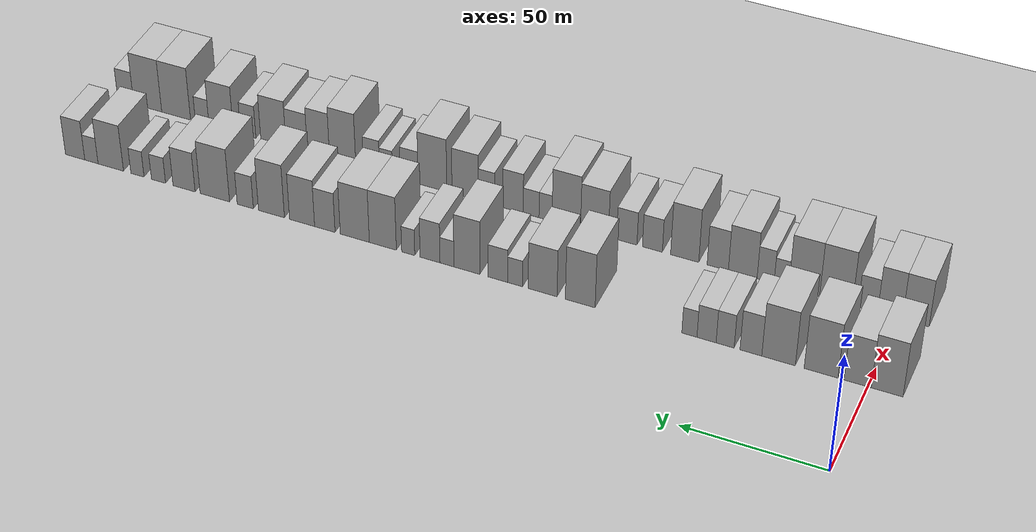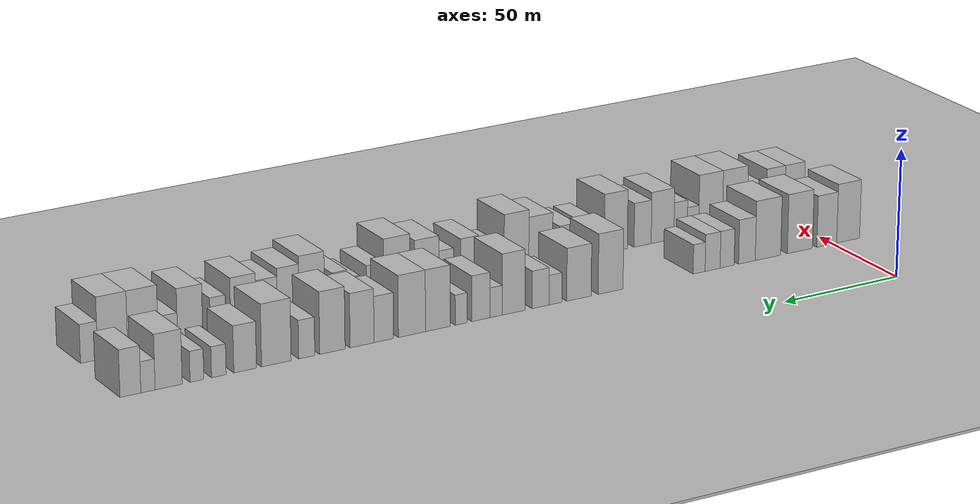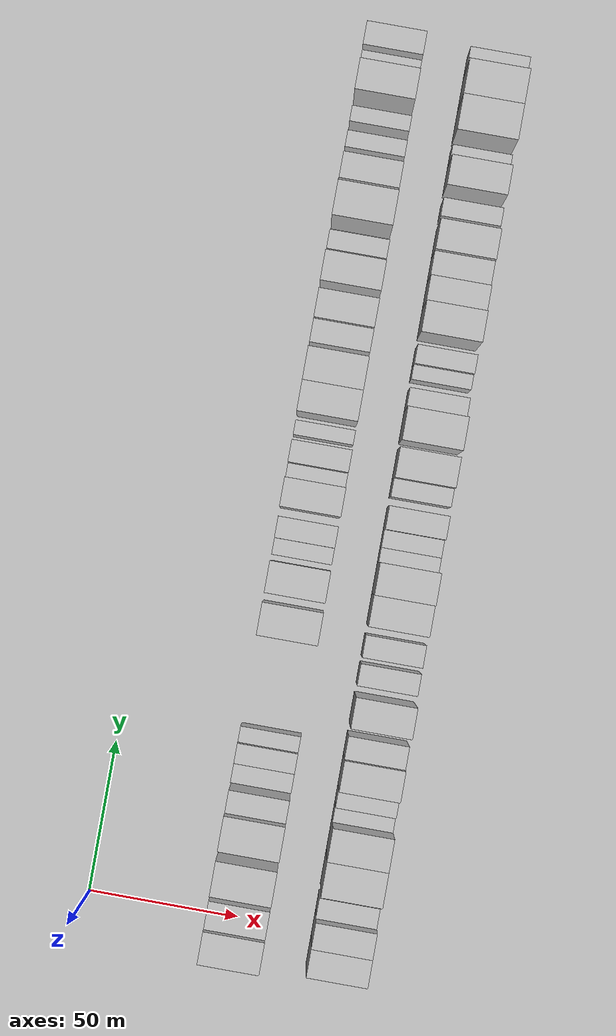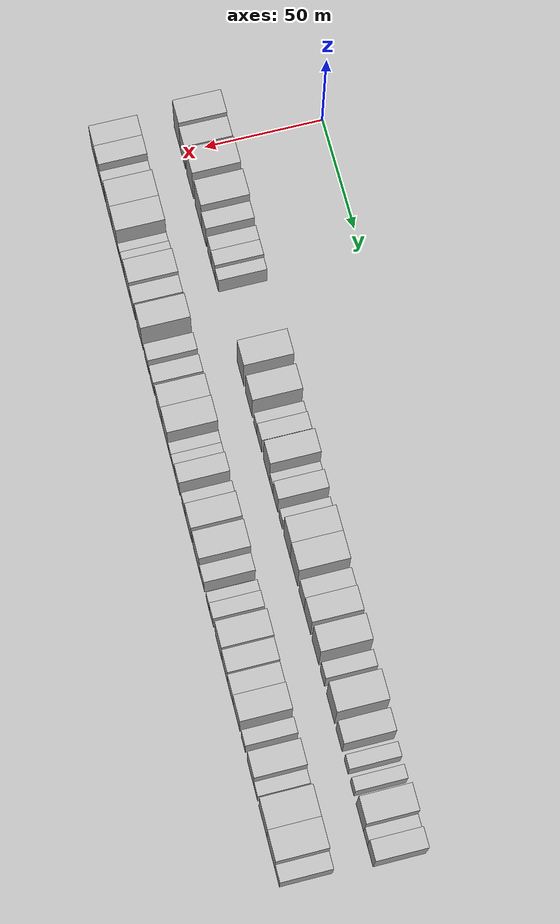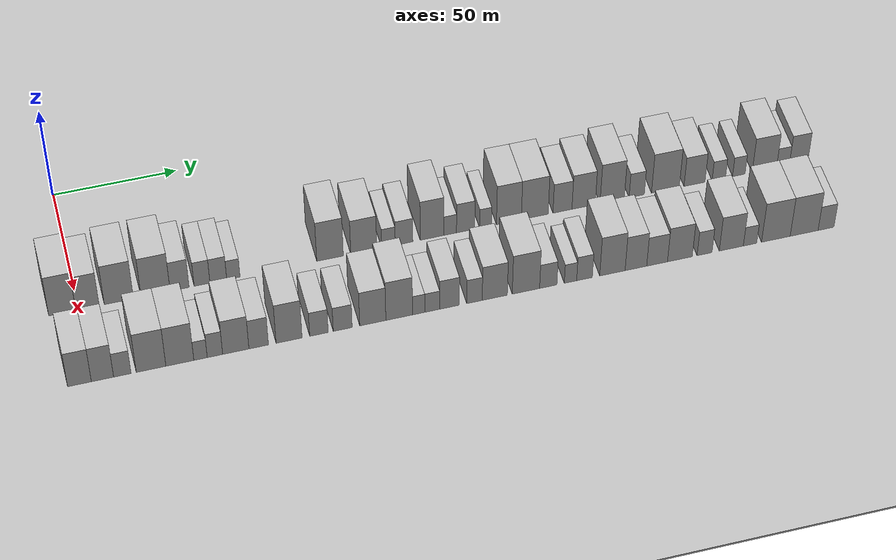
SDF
<sdf version="1.6">
 <world name="default">
  <include><name>ground_plane_1</name><uri>model://HANNAS_ground_plane</uri></include>
  <include>
   <name>ground_plane_2</name>
   <uri>model://HANNAS_ground_plane</uri>
   <pose>100 0 0  0 0 0</pose>
  </include>
  <model name="building_31">
   <static>1</static>
   <pose>50.0000 -6.4729 0 0.000000 0.000000 0.000000</pose>
   <link name="link">
    <pose>0 0 12.00 0 0 0</pose>
    <collision name="collision"><geometry><box><size>20.0000 10.5618 24.0000</size></box></geometry></collision>
    <visual name="visual">
     <cast_shadows>0</cast_shadows>
     <geometry><box><size>20.0000 10.5618 24.0000</size></box></geometry>
     <material>
      <script>
       <uri>model://HANNAS_wall/materials/scripts</uri>
       <uri>model://HANNAS_wall/materials/textures</uri>
       <name>vrc/HANNAS_wall</name>
      </script>
     </material>
    </visual>
   </link>
  </model>
  <model name="building_32">
   <static>1</static>
   <pose>50.0000 3.3889 0 0.000000 0.000000 0.000000</pose>
   <link name="link">
    <pose>0 0 10.50 0 0 0</pose>
    <collision name="collision"><geometry><box><size>20.0000 9.1619 21.0000</size></box></geometry></collision>
    <visual name="visual">
     <cast_shadows>0</cast_shadows>
     <geometry><box><size>20.0000 9.1619 21.0000</size></box></geometry>
     <material>
      <script>
       <uri>model://HANNAS_wall/materials/scripts</uri>
       <uri>model://HANNAS_wall/materials/textures</uri>
       <name>vrc/HANNAS_wall</name>
      </script>
     </material>
    </visual>
   </link>
  </model>
  <model name="building_33">
   <static>1</static>
   <pose>50.0000 15.7041 0 0.000000 0.000000 0.000000</pose>
   <link name="link">
    <pose>0 0 12.00 0 0 0</pose>
    <collision name="collision"><geometry><box><size>20.0000 11.4685 24.0000</size></box></geometry></collision>
    <visual name="visual">
     <cast_shadows>0</cast_shadows>
     <geometry><box><size>20.0000 11.4685 24.0000</size></box></geometry>
     <material>
      <script>
       <uri>model://HANNAS_wall/materials/scripts</uri>
       <uri>model://HANNAS_wall/materials/textures</uri>
       <name>vrc/HANNAS_wall</name>
      </script>
     </material>
    </visual>
   </link>
  </model>
  <model name="building_34">
   <static>1</static>
   <pose>50.0000 30.1727 0 0.000000 0.000000 0.000000</pose>
   <link name="link">
    <pose>0 0 12.00 0 0 0</pose>
    <collision name="collision"><geometry><box><size>20.0000 11.4687 24.0000</size></box></geometry></collision>
    <visual name="visual">
     <cast_shadows>0</cast_shadows>
     <geometry><box><size>20.0000 11.4687 24.0000</size></box></geometry>
     <material>
      <script>
       <uri>model://HANNAS_wall/materials/scripts</uri>
       <uri>model://HANNAS_wall/materials/textures</uri>
       <name>vrc/HANNAS_wall</name>
      </script>
     </material>
    </visual>
   </link>
  </model>
  <model name="building_35">
   <static>1</static>
   <pose>50.0000 39.6602 0 0.000000 0.000000 0.000000</pose>
   <link name="link">
    <pose>0 0 9.00 0 0 0</pose>
    <collision name="collision"><geometry><box><size>20.0000 7.5063 18.0000</size></box></geometry></collision>
    <visual name="visual">
     <cast_shadows>0</cast_shadows>
     <geometry><box><size>20.0000 7.5063 18.0000</size></box></geometry>
     <material>
      <script>
       <uri>model://HANNAS_wall/materials/scripts</uri>
       <uri>model://HANNAS_wall/materials/textures</uri>
       <name>vrc/HANNAS_wall</name>
      </script>
     </material>
    </visual>
   </link>
  </model>
  <model name="building_36">
   <static>1</static>
   <pose>50.0000 48.5422 0 0.000000 0.000000 0.000000</pose>
   <link name="link">
    <pose>0 0 7.50 0 0 0</pose>
    <collision name="collision"><geometry><box><size>20.0000 6.2576 15.0000</size></box></geometry></collision>
    <visual name="visual">
     <cast_shadows>0</cast_shadows>
     <geometry><box><size>20.0000 6.2576 15.0000</size></box></geometry>
     <material>
      <script>
       <uri>model://HANNAS_wall/materials/scripts</uri>
       <uri>model://HANNAS_wall/materials/textures</uri>
       <name>vrc/HANNAS_wall</name>
      </script>
     </material>
    </visual>
   </link>
  </model>
  <model name="building_37">
   <static>1</static>
   <pose>50.0000 55.0027 0 0.000000 0.000000 0.000000</pose>
   <link name="link">
    <pose>0 0 7.50 0 0 0</pose>
    <collision name="collision"><geometry><box><size>20.0000 6.6635 15.0000</size></box></geometry></collision>
    <visual name="visual">
     <cast_shadows>0</cast_shadows>
     <geometry><box><size>20.0000 6.6635 15.0000</size></box></geometry>
     <material>
      <script>
       <uri>model://HANNAS_wall/materials/scripts</uri>
       <uri>model://HANNAS_wall/materials/textures</uri>
       <name>vrc/HANNAS_wall</name>
      </script>
     </material>
    </visual>
   </link>
  </model>
  <model name="building_38">
   <static>1</static>
   <pose>50.0000 60.9826 0 0.000000 0.000000 0.000000</pose>
   <link name="link">
    <pose>0 0 6.00 0 0 0</pose>
    <collision name="collision"><geometry><box><size>20.0000 5.2962 12.0000</size></box></geometry></collision>
    <visual name="visual">
     <cast_shadows>0</cast_shadows>
     <geometry><box><size>20.0000 5.2962 12.0000</size></box></geometry>
     <material>
      <script>
       <uri>model://HANNAS_wall/materials/scripts</uri>
       <uri>model://HANNAS_wall/materials/textures</uri>
       <name>vrc/HANNAS_wall</name>
      </script>
     </material>
    </visual>
   </link>
  </model>
  <model name="building_39">
   <static>1</static>
   <pose>50.0000 99.6997 0 0.000000 0.000000 0.000000</pose>
   <link name="link">
    <pose>0 0 12.00 0 0 0</pose>
    <collision name="collision"><geometry><box><size>20.0000 10.7127 24.0000</size></box></geometry></collision>
    <visual name="visual">
     <cast_shadows>0</cast_shadows>
     <geometry><box><size>20.0000 10.7127 24.0000</size></box></geometry>
     <material>
      <script>
       <uri>model://HANNAS_wall/materials/scripts</uri>
       <uri>model://HANNAS_wall/materials/textures</uri>
       <name>vrc/HANNAS_wall</name>
      </script>
     </material>
    </visual>
   </link>
  </model>
  <model name="building_40">
   <static>1</static>
   <pose>50.0000 113.2985 0 0.000000 0.000000 0.000000</pose>
   <link name="link">
    <pose>0 0 10.50 0 0 0</pose>
    <collision name="collision"><geometry><box><size>20.0000 10.4848 21.0000</size></box></geometry></collision>
    <visual name="visual">
     <cast_shadows>0</cast_shadows>
     <geometry><box><size>20.0000 10.4848 21.0000</size></box></geometry>
     <material>
      <script>
       <uri>model://HANNAS_wall/materials/scripts</uri>
       <uri>model://HANNAS_wall/materials/textures</uri>
       <name>vrc/HANNAS_wall</name>
      </script>
     </material>
    </visual>
   </link>
  </model>
  <model name="building_41">
   <static>1</static>
   <pose>50.0000 123.3057 0 0.000000 0.000000 0.000000</pose>
   <link name="link">
    <pose>0 0 6.00 0 0 0</pose>
    <collision name="collision"><geometry><box><size>20.0000 5.5295 12.0000</size></box></geometry></collision>
    <visual name="visual">
     <cast_shadows>0</cast_shadows>
     <geometry><box><size>20.0000 5.5295 12.0000</size></box></geometry>
     <material>
      <script>
       <uri>model://HANNAS_wall/materials/scripts</uri>
       <uri>model://HANNAS_wall/materials/textures</uri>
       <name>vrc/HANNAS_wall</name>
      </script>
     </material>
    </visual>
   </link>
  </model>
  <model name="building_42">
   <static>1</static>
   <pose>50.0000 129.6413 0 0.000000 0.000000 0.000000</pose>
   <link name="link">
    <pose>0 0 7.50 0 0 0</pose>
    <collision name="collision"><geometry><box><size>20.0000 7.1417 15.0000</size></box></geometry></collision>
    <visual name="visual">
     <cast_shadows>0</cast_shadows>
     <geometry><box><size>20.0000 7.1417 15.0000</size></box></geometry>
     <material>
      <script>
       <uri>model://HANNAS_wall/materials/scripts</uri>
       <uri>model://HANNAS_wall/materials/textures</uri>
       <name>vrc/HANNAS_wall</name>
      </script>
     </material>
    </visual>
   </link>
  </model>
  <model name="building_43">
   <static>1</static>
   <pose>50.0000 141.0162 0 0.000000 0.000000 0.000000</pose>
   <link name="link">
    <pose>0 0 12.00 0 0 0</pose>
    <collision name="collision"><geometry><box><size>20.0000 9.6081 24.0000</size></box></geometry></collision>
    <visual name="visual">
     <cast_shadows>0</cast_shadows>
     <geometry><box><size>20.0000 9.6081 24.0000</size></box></geometry>
     <material>
      <script>
       <uri>model://HANNAS_wall/materials/scripts</uri>
       <uri>model://HANNAS_wall/materials/textures</uri>
       <name>vrc/HANNAS_wall</name>
      </script>
     </material>
    </visual>
   </link>
  </model>
  <model name="building_44">
   <static>1</static>
   <pose>50.0000 148.4141 0 0.000000 0.000000 0.000000</pose>
   <link name="link">
    <pose>0 0 6.00 0 0 0</pose>
    <collision name="collision"><geometry><box><size>20.0000 5.1876 12.0000</size></box></geometry></collision>
    <visual name="visual">
     <cast_shadows>0</cast_shadows>
     <geometry><box><size>20.0000 5.1876 12.0000</size></box></geometry>
     <material>
      <script>
       <uri>model://HANNAS_wall/materials/scripts</uri>
       <uri>model://HANNAS_wall/materials/textures</uri>
       <name>vrc/HANNAS_wall</name>
      </script>
     </material>
    </visual>
   </link>
  </model>
  <model name="building_45">
   <static>1</static>
   <pose>50.0000 154.7307 0 0.000000 0.000000 0.000000</pose>
   <link name="link">
    <pose>0 0 9.00 0 0 0</pose>
    <collision name="collision"><geometry><box><size>20.0000 7.4456 18.0000</size></box></geometry></collision>
    <visual name="visual">
     <cast_shadows>0</cast_shadows>
     <geometry><box><size>20.0000 7.4456 18.0000</size></box></geometry>
     <material>
      <script>
       <uri>model://HANNAS_wall/materials/scripts</uri>
       <uri>model://HANNAS_wall/materials/textures</uri>
       <name>vrc/HANNAS_wall</name>
      </script>
     </material>
    </visual>
   </link>
  </model>
  <model name="building_46">
   <static>1</static>
   <pose>50.0000 162.9121 0 0.000000 0.000000 0.000000</pose>
   <link name="link">
    <pose>0 0 6.00 0 0 0</pose>
    <collision name="collision"><geometry><box><size>20.0000 4.9172 12.0000</size></box></geometry></collision>
    <visual name="visual">
     <cast_shadows>0</cast_shadows>
     <geometry><box><size>20.0000 4.9172 12.0000</size></box></geometry>
     <material>
      <script>
       <uri>model://HANNAS_wall/materials/scripts</uri>
       <uri>model://HANNAS_wall/materials/textures</uri>
       <name>vrc/HANNAS_wall</name>
      </script>
     </material>
    </visual>
   </link>
  </model>
  <model name="building_47">
   <static>1</static>
   <pose>50.0000 172.4851 0 0.000000 0.000000 0.000000</pose>
   <link name="link">
    <pose>0 0 12.00 0 0 0</pose>
    <collision name="collision"><geometry><box><size>20.0000 10.2289 24.0000</size></box></geometry></collision>
    <visual name="visual">
     <cast_shadows>0</cast_shadows>
     <geometry><box><size>20.0000 10.2289 24.0000</size></box></geometry>
     <material>
      <script>
       <uri>model://HANNAS_wall/materials/scripts</uri>
       <uri>model://HANNAS_wall/materials/textures</uri>
       <name>vrc/HANNAS_wall</name>
      </script>
     </material>
    </visual>
   </link>
  </model>
  <model name="building_48">
   <static>1</static>
   <pose>50.0000 183.1370 0 0.000000 0.000000 0.000000</pose>
   <link name="link">
    <pose>0 0 12.00 0 0 0</pose>
    <collision name="collision"><geometry><box><size>20.0000 11.0750 24.0000</size></box></geometry></collision>
    <visual name="visual">
     <cast_shadows>0</cast_shadows>
     <geometry><box><size>20.0000 11.0750 24.0000</size></box></geometry>
     <material>
      <script>
       <uri>model://HANNAS_wall/materials/scripts</uri>
       <uri>model://HANNAS_wall/materials/textures</uri>
       <name>vrc/HANNAS_wall</name>
      </script>
     </material>
    </visual>
   </link>
  </model>
  <model name="building_49">
   <static>1</static>
   <pose>50.0000 194.6000 0 0.000000 0.000000 0.000000</pose>
   <link name="link">
    <pose>0 0 9.00 0 0 0</pose>
    <collision name="collision"><geometry><box><size>20.0000 7.8511 18.0000</size></box></geometry></collision>
    <visual name="visual">
     <cast_shadows>0</cast_shadows>
     <geometry><box><size>20.0000 7.8511 18.0000</size></box></geometry>
     <material>
      <script>
       <uri>model://HANNAS_wall/materials/scripts</uri>
       <uri>model://HANNAS_wall/materials/textures</uri>
       <name>vrc/HANNAS_wall</name>
      </script>
     </material>
    </visual>
   </link>
  </model>
  <model name="building_50">
   <static>1</static>
   <pose>50.0000 203.3567 0 0.000000 0.000000 0.000000</pose>
   <link name="link">
    <pose>0 0 10.50 0 0 0</pose>
    <collision name="collision"><geometry><box><size>20.0000 9.6621 21.0000</size></box></geometry></collision>
    <visual name="visual">
     <cast_shadows>0</cast_shadows>
     <geometry><box><size>20.0000 9.6621 21.0000</size></box></geometry>
     <material>
      <script>
       <uri>model://HANNAS_wall/materials/scripts</uri>
       <uri>model://HANNAS_wall/materials/textures</uri>
       <name>vrc/HANNAS_wall</name>
      </script>
     </material>
    </visual>
   </link>
  </model>
  <model name="building_51">
   <static>1</static>
   <pose>50.0000 215.2399 0 0.000000 0.000000 0.000000</pose>
   <link name="link">
    <pose>0 0 12.00 0 0 0</pose>
    <collision name="collision"><geometry><box><size>20.0000 10.1043 24.0000</size></box></geometry></collision>
    <visual name="visual">
     <cast_shadows>0</cast_shadows>
     <geometry><box><size>20.0000 10.1043 24.0000</size></box></geometry>
     <material>
      <script>
       <uri>model://HANNAS_wall/materials/scripts</uri>
       <uri>model://HANNAS_wall/materials/textures</uri>
       <name>vrc/HANNAS_wall</name>
      </script>
     </material>
    </visual>
   </link>
  </model>
  <model name="building_52">
   <static>1</static>
   <pose>50.0000 225.4772 0 0.000000 0.000000 0.000000</pose>
   <link name="link">
    <pose>0 0 7.50 0 0 0</pose>
    <collision name="collision"><geometry><box><size>20.0000 6.3703 15.0000</size></box></geometry></collision>
    <visual name="visual">
     <cast_shadows>0</cast_shadows>
     <geometry><box><size>20.0000 6.3703 15.0000</size></box></geometry>
     <material>
      <script>
       <uri>model://HANNAS_wall/materials/scripts</uri>
       <uri>model://HANNAS_wall/materials/textures</uri>
       <name>vrc/HANNAS_wall</name>
      </script>
     </material>
    </visual>
   </link>
  </model>
  <model name="building_53">
   <static>1</static>
   <pose>50.0000 237.4804 0 0.000000 0.000000 0.000000</pose>
   <link name="link">
    <pose>0 0 12.00 0 0 0</pose>
    <collision name="collision"><geometry><box><size>20.0000 11.6361 24.0000</size></box></geometry></collision>
    <visual name="visual">
     <cast_shadows>0</cast_shadows>
     <geometry><box><size>20.0000 11.6361 24.0000</size></box></geometry>
     <material>
      <script>
       <uri>model://HANNAS_wall/materials/scripts</uri>
       <uri>model://HANNAS_wall/materials/textures</uri>
       <name>vrc/HANNAS_wall</name>
      </script>
     </material>
    </visual>
   </link>
  </model>
  <model name="building_54">
   <static>1</static>
   <pose>50.0000 249.7048 0 0.000000 0.000000 0.000000</pose>
   <link name="link">
    <pose>0 0 9.00 0 0 0</pose>
    <collision name="collision"><geometry><box><size>20.0000 8.8127 18.0000</size></box></geometry></collision>
    <visual name="visual">
     <cast_shadows>0</cast_shadows>
     <geometry><box><size>20.0000 8.8127 18.0000</size></box></geometry>
     <material>
      <script>
       <uri>model://HANNAS_wall/materials/scripts</uri>
       <uri>model://HANNAS_wall/materials/textures</uri>
       <name>vrc/HANNAS_wall</name>
      </script>
     </material>
    </visual>
   </link>
  </model>
  <model name="building_55">
   <static>1</static>
   <pose>50.0000 259.9337 0 0.000000 0.000000 0.000000</pose>
   <link name="link">
    <pose>0 0 6.00 0 0 0</pose>
    <collision name="collision"><geometry><box><size>20.0000 5.6451 12.0000</size></box></geometry></collision>
    <visual name="visual">
     <cast_shadows>0</cast_shadows>
     <geometry><box><size>20.0000 5.6451 12.0000</size></box></geometry>
     <material>
      <script>
       <uri>model://HANNAS_wall/materials/scripts</uri>
       <uri>model://HANNAS_wall/materials/textures</uri>
       <name>vrc/HANNAS_wall</name>
      </script>
     </material>
    </visual>
   </link>
  </model>
  <model name="building_56">
   <static>1</static>
   <pose>50.0000 268.4048 0 0.000000 0.000000 0.000000</pose>
   <link name="link">
    <pose>0 0 6.00 0 0 0</pose>
    <collision name="collision"><geometry><box><size>20.0000 5.2970 12.0000</size></box></geometry></collision>
    <visual name="visual">
     <cast_shadows>0</cast_shadows>
     <geometry><box><size>20.0000 5.2970 12.0000</size></box></geometry>
     <material>
      <script>
       <uri>model://HANNAS_wall/materials/scripts</uri>
       <uri>model://HANNAS_wall/materials/textures</uri>
       <name>vrc/HANNAS_wall</name>
      </script>
     </material>
    </visual>
   </link>
  </model>
  <model name="building_57">
   <static>1</static>
   <pose>50.0000 279.2249 0 0.000000 0.000000 0.000000</pose>
   <link name="link">
    <pose>0 0 10.50 0 0 0</pose>
    <collision name="collision"><geometry><box><size>20.0000 10.3432 21.0000</size></box></geometry></collision>
    <visual name="visual">
     <cast_shadows>0</cast_shadows>
     <geometry><box><size>20.0000 10.3432 21.0000</size></box></geometry>
     <material>
      <script>
       <uri>model://HANNAS_wall/materials/scripts</uri>
       <uri>model://HANNAS_wall/materials/textures</uri>
       <name>vrc/HANNAS_wall</name>
      </script>
     </material>
    </visual>
   </link>
  </model>
  <model name="building_58">
   <static>1</static>
   <pose>50.0000 287.1103 0 0.000000 0.000000 0.000000</pose>
   <link name="link">
    <pose>0 0 6.00 0 0 0</pose>
    <collision name="collision"><geometry><box><size>20.0000 5.4277 12.0000</size></box></geometry></collision>
    <visual name="visual">
     <cast_shadows>0</cast_shadows>
     <geometry><box><size>20.0000 5.4277 12.0000</size></box></geometry>
     <material>
      <script>
       <uri>model://HANNAS_wall/materials/scripts</uri>
       <uri>model://HANNAS_wall/materials/textures</uri>
       <name>vrc/HANNAS_wall</name>
      </script>
     </material>
    </visual>
   </link>
  </model>
  <model name="building_59">
   <static>1</static>
   <pose>50.0000 293.7684 0 0.000000 0.000000 0.000000</pose>
   <link name="link">
    <pose>0 0 9.00 0 0 0</pose>
    <collision name="collision"><geometry><box><size>20.0000 7.8884 18.0000</size></box></geometry></collision>
    <visual name="visual">
     <cast_shadows>0</cast_shadows>
     <geometry><box><size>20.0000 7.8884 18.0000</size></box></geometry>
     <material>
      <script>
       <uri>model://HANNAS_wall/materials/scripts</uri>
       <uri>model://HANNAS_wall/materials/textures</uri>
       <name>vrc/HANNAS_wall</name>
      </script>
     </material>
    </visual>
   </link>
  </model>
  <model name="building_92">
   <static>1</static>
   <pose>85.0000 -5.9028 0 0.000000 0.000000 0.000000</pose>
   <link name="link">
    <pose>0 0 10.50 0 0 0</pose>
    <collision name="collision"><geometry><box><size>20.0000 9.1140 21.0000</size></box></geometry></collision>
    <visual name="visual">
     <cast_shadows>0</cast_shadows>
     <geometry><box><size>20.0000 9.1140 21.0000</size></box></geometry>
     <material>
      <script>
       <uri>model://HANNAS_wall/materials/scripts</uri>
       <uri>model://HANNAS_wall/materials/textures</uri>
       <name>vrc/HANNAS_wall</name>
      </script>
     </material>
    </visual>
   </link>
  </model>
  <model name="building_93">
   <static>1</static>
   <pose>85.0000 2.9292 0 0.000000 0.000000 0.000000</pose>
   <link name="link">
    <pose>0 0 10.50 0 0 0</pose>
    <collision name="collision"><geometry><box><size>20.0000 8.5500 21.0000</size></box></geometry></collision>
    <visual name="visual">
     <cast_shadows>0</cast_shadows>
     <geometry><box><size>20.0000 8.5500 21.0000</size></box></geometry>
     <material>
      <script>
       <uri>model://HANNAS_wall/materials/scripts</uri>
       <uri>model://HANNAS_wall/materials/textures</uri>
       <name>vrc/HANNAS_wall</name>
      </script>
     </material>
    </visual>
   </link>
  </model>
  <model name="building_94">
   <static>1</static>
   <pose>85.0000 10.5627 0 0.000000 0.000000 0.000000</pose>
   <link name="link">
    <pose>0 0 7.50 0 0 0</pose>
    <collision name="collision"><geometry><box><size>20.0000 6.7169 15.0000</size></box></geometry></collision>
    <visual name="visual">
     <cast_shadows>0</cast_shadows>
     <geometry><box><size>20.0000 6.7169 15.0000</size></box></geometry>
     <material>
      <script>
       <uri>model://HANNAS_wall/materials/scripts</uri>
       <uri>model://HANNAS_wall/materials/textures</uri>
       <name>vrc/HANNAS_wall</name>
      </script>
     </material>
    </visual>
   </link>
  </model>
  <model name="building_95">
   <static>1</static>
   <pose>85.0000 21.6450 0 0.000000 0.000000 0.000000</pose>
   <link name="link">
    <pose>0 0 12.00 0 0 0</pose>
    <collision name="collision"><geometry><box><size>20.0000 11.4477 24.0000</size></box></geometry></collision>
    <visual name="visual">
     <cast_shadows>0</cast_shadows>
     <geometry><box><size>20.0000 11.4477 24.0000</size></box></geometry>
     <material>
      <script>
       <uri>model://HANNAS_wall/materials/scripts</uri>
       <uri>model://HANNAS_wall/materials/textures</uri>
       <name>vrc/HANNAS_wall</name>
      </script>
     </material>
    </visual>
   </link>
  </model>
  <model name="building_96">
   <static>1</static>
   <pose>85.0000 32.7857 0 0.000000 0.000000 0.000000</pose>
   <link name="link">
    <pose>0 0 12.00 0 0 0</pose>
    <collision name="collision"><geometry><box><size>20.0000 10.8338 24.0000</size></box></geometry></collision>
    <visual name="visual">
     <cast_shadows>0</cast_shadows>
     <geometry><box><size>20.0000 10.8338 24.0000</size></box></geometry>
     <material>
      <script>
       <uri>model://HANNAS_wall/materials/scripts</uri>
       <uri>model://HANNAS_wall/materials/textures</uri>
       <name>vrc/HANNAS_wall</name>
      </script>
     </material>
    </visual>
   </link>
  </model>
  <model name="building_97">
   <static>1</static>
   <pose>85.0000 40.8037 0 0.000000 0.000000 0.000000</pose>
   <link name="link">
    <pose>0 0 6.00 0 0 0</pose>
    <collision name="collision"><geometry><box><size>20.0000 5.2021 12.0000</size></box></geometry></collision>
    <visual name="visual">
     <cast_shadows>0</cast_shadows>
     <geometry><box><size>20.0000 5.2021 12.0000</size></box></geometry>
     <material>
      <script>
       <uri>model://HANNAS_wall/materials/scripts</uri>
       <uri>model://HANNAS_wall/materials/textures</uri>
       <name>vrc/HANNAS_wall</name>
      </script>
     </material>
    </visual>
   </link>
  </model>
  <model name="building_98">
   <static>1</static>
   <pose>85.0000 46.4059 0 0.000000 0.000000 0.000000</pose>
   <link name="link">
    <pose>0 0 7.50 0 0 0</pose>
    <collision name="collision"><geometry><box><size>20.0000 6.0024 15.0000</size></box></geometry></collision>
    <visual name="visual">
     <cast_shadows>0</cast_shadows>
     <geometry><box><size>20.0000 6.0024 15.0000</size></box></geometry>
     <material>
      <script>
       <uri>model://HANNAS_wall/materials/scripts</uri>
       <uri>model://HANNAS_wall/materials/textures</uri>
       <name>vrc/HANNAS_wall</name>
      </script>
     </material>
    </visual>
   </link>
  </model>
  <model name="building_99">
   <static>1</static>
   <pose>85.0000 54.5249 0 0.000000 0.000000 0.000000</pose>
   <link name="link">
    <pose>0 0 10.50 0 0 0</pose>
    <collision name="collision"><geometry><box><size>20.0000 10.2356 21.0000</size></box></geometry></collision>
    <visual name="visual">
     <cast_shadows>0</cast_shadows>
     <geometry><box><size>20.0000 10.2356 21.0000</size></box></geometry>
     <material>
      <script>
       <uri>model://HANNAS_wall/materials/scripts</uri>
       <uri>model://HANNAS_wall/materials/textures</uri>
       <name>vrc/HANNAS_wall</name>
      </script>
     </material>
    </visual>
   </link>
  </model>
  <model name="building_100">
   <static>1</static>
   <pose>85.0000 63.4577 0 0.000000 0.000000 0.000000</pose>
   <link name="link">
    <pose>0 0 9.00 0 0 0</pose>
    <collision name="collision"><geometry><box><size>20.0000 7.6299 18.0000</size></box></geometry></collision>
    <visual name="visual">
     <cast_shadows>0</cast_shadows>
     <geometry><box><size>20.0000 7.6299 18.0000</size></box></geometry>
     <material>
      <script>
       <uri>model://HANNAS_wall/materials/scripts</uri>
       <uri>model://HANNAS_wall/materials/textures</uri>
       <name>vrc/HANNAS_wall</name>
      </script>
     </material>
    </visual>
   </link>
  </model>
  <model name="building_101">
   <static>1</static>
   <pose>85.0000 75.3697 0 0.000000 0.000000 0.000000</pose>
   <link name="link">
    <pose>0 0 12.00 0 0 0</pose>
    <collision name="collision"><geometry><box><size>20.0000 10.1941 24.0000</size></box></geometry></collision>
    <visual name="visual">
     <cast_shadows>0</cast_shadows>
     <geometry><box><size>20.0000 10.1941 24.0000</size></box></geometry>
     <material>
      <script>
       <uri>model://HANNAS_wall/materials/scripts</uri>
       <uri>model://HANNAS_wall/materials/textures</uri>
       <name>vrc/HANNAS_wall</name>
      </script>
     </material>
    </visual>
   </link>
  </model>
  <model name="building_102">
   <static>1</static>
   <pose>85.0000 87.1028 0 0.000000 0.000000 0.000000</pose>
   <link name="link">
    <pose>0 0 7.50 0 0 0</pose>
    <collision name="collision"><geometry><box><size>20.0000 7.2722 15.0000</size></box></geometry></collision>
    <visual name="visual">
     <cast_shadows>0</cast_shadows>
     <geometry><box><size>20.0000 7.2722 15.0000</size></box></geometry>
     <material>
      <script>
       <uri>model://HANNAS_wall/materials/scripts</uri>
       <uri>model://HANNAS_wall/materials/textures</uri>
       <name>vrc/HANNAS_wall</name>
      </script>
     </material>
    </visual>
   </link>
  </model>
  <model name="building_103">
   <static>1</static>
   <pose>85.0000 96.4759 0 0.000000 0.000000 0.000000</pose>
   <link name="link">
    <pose>0 0 7.50 0 0 0</pose>
    <collision name="collision"><geometry><box><size>20.0000 7.4739 15.0000</size></box></geometry></collision>
    <visual name="visual">
     <cast_shadows>0</cast_shadows>
     <geometry><box><size>20.0000 7.4739 15.0000</size></box></geometry>
     <material>
      <script>
       <uri>model://HANNAS_wall/materials/scripts</uri>
       <uri>model://HANNAS_wall/materials/textures</uri>
       <name>vrc/HANNAS_wall</name>
      </script>
     </material>
    </visual>
   </link>
  </model>
  <model name="building_104">
   <static>1</static>
   <pose>85.0000 108.3923 0 0.000000 0.000000 0.000000</pose>
   <link name="link">
    <pose>0 0 10.50 0 0 0</pose>
    <collision name="collision"><geometry><box><size>20.0000 10.3588 21.0000</size></box></geometry></collision>
    <visual name="visual">
     <cast_shadows>0</cast_shadows>
     <geometry><box><size>20.0000 10.3588 21.0000</size></box></geometry>
     <material>
      <script>
       <uri>model://HANNAS_wall/materials/scripts</uri>
       <uri>model://HANNAS_wall/materials/textures</uri>
       <name>vrc/HANNAS_wall</name>
      </script>
     </material>
    </visual>
   </link>
  </model>
  <model name="building_105">
   <static>1</static>
   <pose>85.0000 118.8786 0 0.000000 0.000000 0.000000</pose>
   <link name="link">
    <pose>0 0 12.00 0 0 0</pose>
    <collision name="collision"><geometry><box><size>20.0000 10.6140 24.0000</size></box></geometry></collision>
    <visual name="visual">
     <cast_shadows>0</cast_shadows>
     <geometry><box><size>20.0000 10.6140 24.0000</size></box></geometry>
     <material>
      <script>
       <uri>model://HANNAS_wall/materials/scripts</uri>
       <uri>model://HANNAS_wall/materials/textures</uri>
       <name>vrc/HANNAS_wall</name>
      </script>
     </material>
    </visual>
   </link>
  </model>
  <model name="building_106">
   <static>1</static>
   <pose>85.0000 126.6306 0 0.000000 0.000000 0.000000</pose>
   <link name="link">
    <pose>0 0 6.00 0 0 0</pose>
    <collision name="collision"><geometry><box><size>20.0000 4.8900 12.0000</size></box></geometry></collision>
    <visual name="visual">
     <cast_shadows>0</cast_shadows>
     <geometry><box><size>20.0000 4.8900 12.0000</size></box></geometry>
     <material>
      <script>
       <uri>model://HANNAS_wall/materials/scripts</uri>
       <uri>model://HANNAS_wall/materials/textures</uri>
       <name>vrc/HANNAS_wall</name>
      </script>
     </material>
    </visual>
   </link>
  </model>
  <model name="building_107">
   <static>1</static>
   <pose>85.0000 132.0474 0 0.000000 0.000000 0.000000</pose>
   <link name="link">
    <pose>0 0 6.00 0 0 0</pose>
    <collision name="collision"><geometry><box><size>20.0000 5.9436 12.0000</size></box></geometry></collision>
    <visual name="visual">
     <cast_shadows>0</cast_shadows>
     <geometry><box><size>20.0000 5.9436 12.0000</size></box></geometry>
     <material>
      <script>
       <uri>model://HANNAS_wall/materials/scripts</uri>
       <uri>model://HANNAS_wall/materials/textures</uri>
       <name>vrc/HANNAS_wall</name>
      </script>
     </material>
    </visual>
   </link>
  </model>
  <model name="building_108">
   <static>1</static>
   <pose>85.0000 138.9345 0 0.000000 0.000000 0.000000</pose>
   <link name="link">
    <pose>0 0 9.00 0 0 0</pose>
    <collision name="collision"><geometry><box><size>20.0000 7.8307 18.0000</size></box></geometry></collision>
    <visual name="visual">
     <cast_shadows>0</cast_shadows>
     <geometry><box><size>20.0000 7.8307 18.0000</size></box></geometry>
     <material>
      <script>
       <uri>model://HANNAS_wall/materials/scripts</uri>
       <uri>model://HANNAS_wall/materials/textures</uri>
       <name>vrc/HANNAS_wall</name>
      </script>
     </material>
    </visual>
   </link>
  </model>
  <model name="building_109">
   <static>1</static>
   <pose>85.0000 148.9403 0 0.000000 0.000000 0.000000</pose>
   <link name="link">
    <pose>0 0 7.50 0 0 0</pose>
    <collision name="collision"><geometry><box><size>20.0000 6.1810 15.0000</size></box></geometry></collision>
    <visual name="visual">
     <cast_shadows>0</cast_shadows>
     <geometry><box><size>20.0000 6.1810 15.0000</size></box></geometry>
     <material>
      <script>
       <uri>model://HANNAS_wall/materials/scripts</uri>
       <uri>model://HANNAS_wall/materials/textures</uri>
       <name>vrc/HANNAS_wall</name>
      </script>
     </material>
    </visual>
   </link>
  </model>
  <model name="building_110">
   <static>1</static>
   <pose>85.0000 157.0736 0 0.000000 0.000000 0.000000</pose>
   <link name="link">
    <pose>0 0 10.50 0 0 0</pose>
    <collision name="collision"><geometry><box><size>20.0000 10.0856 21.0000</size></box></geometry></collision>
    <visual name="visual">
     <cast_shadows>0</cast_shadows>
     <geometry><box><size>20.0000 10.0856 21.0000</size></box></geometry>
     <material>
      <script>
       <uri>model://HANNAS_wall/materials/scripts</uri>
       <uri>model://HANNAS_wall/materials/textures</uri>
       <name>vrc/HANNAS_wall</name>
      </script>
     </material>
    </visual>
   </link>
  </model>
  <model name="building_111">
   <static>1</static>
   <pose>85.0000 169.6368 0 0.000000 0.000000 0.000000</pose>
   <link name="link">
    <pose>0 0 12.00 0 0 0</pose>
    <collision name="collision"><geometry><box><size>20.0000 11.0409 24.0000</size></box></geometry></collision>
    <visual name="visual">
     <cast_shadows>0</cast_shadows>
     <geometry><box><size>20.0000 11.0409 24.0000</size></box></geometry>
     <material>
      <script>
       <uri>model://HANNAS_wall/materials/scripts</uri>
       <uri>model://HANNAS_wall/materials/textures</uri>
       <name>vrc/HANNAS_wall</name>
      </script>
     </material>
    </visual>
   </link>
  </model>
  <model name="building_112">
   <static>1</static>
   <pose>85.0000 178.6583 0 0.000000 0.000000 0.000000</pose>
   <link name="link">
    <pose>0 0 7.50 0 0 0</pose>
    <collision name="collision"><geometry><box><size>20.0000 7.0020 15.0000</size></box></geometry></collision>
    <visual name="visual">
     <cast_shadows>0</cast_shadows>
     <geometry><box><size>20.0000 7.0020 15.0000</size></box></geometry>
     <material>
      <script>
       <uri>model://HANNAS_wall/materials/scripts</uri>
       <uri>model://HANNAS_wall/materials/textures</uri>
       <name>vrc/HANNAS_wall</name>
      </script>
     </material>
    </visual>
   </link>
  </model>
  <model name="building_113">
   <static>1</static>
   <pose>85.0000 187.6630 0 0.000000 0.000000 0.000000</pose>
   <link name="link">
    <pose>0 0 6.00 0 0 0</pose>
    <collision name="collision"><geometry><box><size>20.0000 5.0075 12.0000</size></box></geometry></collision>
    <visual name="visual">
     <cast_shadows>0</cast_shadows>
     <geometry><box><size>20.0000 5.0075 12.0000</size></box></geometry>
     <material>
      <script>
       <uri>model://HANNAS_wall/materials/scripts</uri>
       <uri>model://HANNAS_wall/materials/textures</uri>
       <name>vrc/HANNAS_wall</name>
      </script>
     </material>
    </visual>
   </link>
  </model>
  <model name="building_114">
   <static>1</static>
   <pose>85.0000 193.3498 0 0.000000 0.000000 0.000000</pose>
   <link name="link">
    <pose>0 0 7.50 0 0 0</pose>
    <collision name="collision"><geometry><box><size>20.0000 6.3661 15.0000</size></box></geometry></collision>
    <visual name="visual">
     <cast_shadows>0</cast_shadows>
     <geometry><box><size>20.0000 6.3661 15.0000</size></box></geometry>
     <material>
      <script>
       <uri>model://HANNAS_wall/materials/scripts</uri>
       <uri>model://HANNAS_wall/materials/textures</uri>
       <name>vrc/HANNAS_wall</name>
      </script>
     </material>
    </visual>
   </link>
  </model>
  <model name="building_115">
   <static>1</static>
   <pose>85.0000 204.7141 0 0.000000 0.000000 0.000000</pose>
   <link name="link">
    <pose>0 0 12.00 0 0 0</pose>
    <collision name="collision"><geometry><box><size>20.0000 10.3624 24.0000</size></box></geometry></collision>
    <visual name="visual">
     <cast_shadows>0</cast_shadows>
     <geometry><box><size>20.0000 10.3624 24.0000</size></box></geometry>
     <material>
      <script>
       <uri>model://HANNAS_wall/materials/scripts</uri>
       <uri>model://HANNAS_wall/materials/textures</uri>
       <name>vrc/HANNAS_wall</name>
      </script>
     </material>
    </visual>
   </link>
  </model>
  <model name="building_116">
   <static>1</static>
   <pose>85.0000 214.3122 0 0.000000 0.000000 0.000000</pose>
   <link name="link">
    <pose>0 0 10.50 0 0 0</pose>
    <collision name="collision"><geometry><box><size>20.0000 8.8339 21.0000</size></box></geometry></collision>
    <visual name="visual">
     <cast_shadows>0</cast_shadows>
     <geometry><box><size>20.0000 8.8339 21.0000</size></box></geometry>
     <material>
      <script>
       <uri>model://HANNAS_wall/materials/scripts</uri>
       <uri>model://HANNAS_wall/materials/textures</uri>
       <name>vrc/HANNAS_wall</name>
      </script>
     </material>
    </visual>
   </link>
  </model>
  <model name="building_117">
   <static>1</static>
   <pose>85.0000 222.9933 0 0.000000 0.000000 0.000000</pose>
   <link name="link">
    <pose>0 0 9.00 0 0 0</pose>
    <collision name="collision"><geometry><box><size>20.0000 8.5284 18.0000</size></box></geometry></collision>
    <visual name="visual">
     <cast_shadows>0</cast_shadows>
     <geometry><box><size>20.0000 8.5284 18.0000</size></box></geometry>
     <material>
      <script>
       <uri>model://HANNAS_wall/materials/scripts</uri>
       <uri>model://HANNAS_wall/materials/textures</uri>
       <name>vrc/HANNAS_wall</name>
      </script>
     </material>
    </visual>
   </link>
  </model>
  <model name="building_118">
   <static>1</static>
   <pose>85.0000 232.3444 0 0.000000 0.000000 0.000000</pose>
   <link name="link">
    <pose>0 0 10.50 0 0 0</pose>
    <collision name="collision"><geometry><box><size>20.0000 10.1737 21.0000</size></box></geometry></collision>
    <visual name="visual">
     <cast_shadows>0</cast_shadows>
     <geometry><box><size>20.0000 10.1737 21.0000</size></box></geometry>
     <material>
      <script>
       <uri>model://HANNAS_wall/materials/scripts</uri>
       <uri>model://HANNAS_wall/materials/textures</uri>
       <name>vrc/HANNAS_wall</name>
      </script>
     </material>
    </visual>
   </link>
  </model>
  <model name="building_119">
   <static>1</static>
   <pose>85.0000 242.5098 0 0.000000 0.000000 0.000000</pose>
   <link name="link">
    <pose>0 0 7.50 0 0 0</pose>
    <collision name="collision"><geometry><box><size>20.0000 6.1571 15.0000</size></box></geometry></collision>
    <visual name="visual">
     <cast_shadows>0</cast_shadows>
     <geometry><box><size>20.0000 6.1571 15.0000</size></box></geometry>
     <material>
      <script>
       <uri>model://HANNAS_wall/materials/scripts</uri>
       <uri>model://HANNAS_wall/materials/textures</uri>
       <name>vrc/HANNAS_wall</name>
      </script>
     </material>
    </visual>
   </link>
  </model>
  <model name="building_120">
   <static>1</static>
   <pose>85.0000 253.5652 0 0.000000 0.000000 0.000000</pose>
   <link name="link">
    <pose>0 0 10.50 0 0 0</pose>
    <collision name="collision"><geometry><box><size>20.0000 9.9537 21.0000</size></box></geometry></collision>
    <visual name="visual">
     <cast_shadows>0</cast_shadows>
     <geometry><box><size>20.0000 9.9537 21.0000</size></box></geometry>
     <material>
      <script>
       <uri>model://HANNAS_wall/materials/scripts</uri>
       <uri>model://HANNAS_wall/materials/textures</uri>
       <name>vrc/HANNAS_wall</name>
      </script>
     </material>
    </visual>
   </link>
  </model>
  <model name="building_121">
   <static>1</static>
   <pose>85.0000 261.3185 0 0.000000 0.000000 0.000000</pose>
   <link name="link">
    <pose>0 0 6.00 0 0 0</pose>
    <collision name="collision"><geometry><box><size>20.0000 5.5530 12.0000</size></box></geometry></collision>
    <visual name="visual">
     <cast_shadows>0</cast_shadows>
     <geometry><box><size>20.0000 5.5530 12.0000</size></box></geometry>
     <material>
      <script>
       <uri>model://HANNAS_wall/materials/scripts</uri>
       <uri>model://HANNAS_wall/materials/textures</uri>
       <name>vrc/HANNAS_wall</name>
      </script>
     </material>
    </visual>
   </link>
  </model>
  <model name="building_122">
   <static>1</static>
   <pose>85.0000 272.0554 0 0.000000 0.000000 0.000000</pose>
   <link name="link">
    <pose>0 0 12.00 0 0 0</pose>
    <collision name="collision"><geometry><box><size>20.0000 11.9208 24.0000</size></box></geometry></collision>
    <visual name="visual">
     <cast_shadows>0</cast_shadows>
     <geometry><box><size>20.0000 11.9208 24.0000</size></box></geometry>
     <material>
      <script>
       <uri>model://HANNAS_wall/materials/scripts</uri>
       <uri>model://HANNAS_wall/materials/textures</uri>
       <name>vrc/HANNAS_wall</name>
      </script>
     </material>
    </visual>
   </link>
  </model>
  <model name="building_123">
   <static>1</static>
   <pose>85.0000 283.8300 0 0.000000 0.000000 0.000000</pose>
   <link name="link">
    <pose>0 0 12.00 0 0 0</pose>
    <collision name="collision"><geometry><box><size>20.0000 11.6283 24.0000</size></box></geometry></collision>
    <visual name="visual">
     <cast_shadows>0</cast_shadows>
     <geometry><box><size>20.0000 11.6283 24.0000</size></box></geometry>
     <material>
      <script>
       <uri>model://HANNAS_wall/materials/scripts</uri>
       <uri>model://HANNAS_wall/materials/textures</uri>
       <name>vrc/HANNAS_wall</name>
      </script>
     </material>
    </visual>
   </link>
  </model>
  <model name="building_124">
   <static>1</static>
   <pose>85.0000 292.9630 0 0.000000 0.000000 0.000000</pose>
   <link name="link">
    <pose>0 0 7.50 0 0 0</pose>
    <collision name="collision"><geometry><box><size>20.0000 6.6377 15.0000</size></box></geometry></collision>
    <visual name="visual">
     <cast_shadows>0</cast_shadows>
     <geometry><box><size>20.0000 6.6377 15.0000</size></box></geometry>
     <material>
      <script>
       <uri>model://HANNAS_wall/materials/scripts</uri>
       <uri>model://HANNAS_wall/materials/textures</uri>
       <name>vrc/HANNAS_wall</name>
      </script>
     </material>
    </visual>
   </link>
  </model>
 </world>
</sdf>
